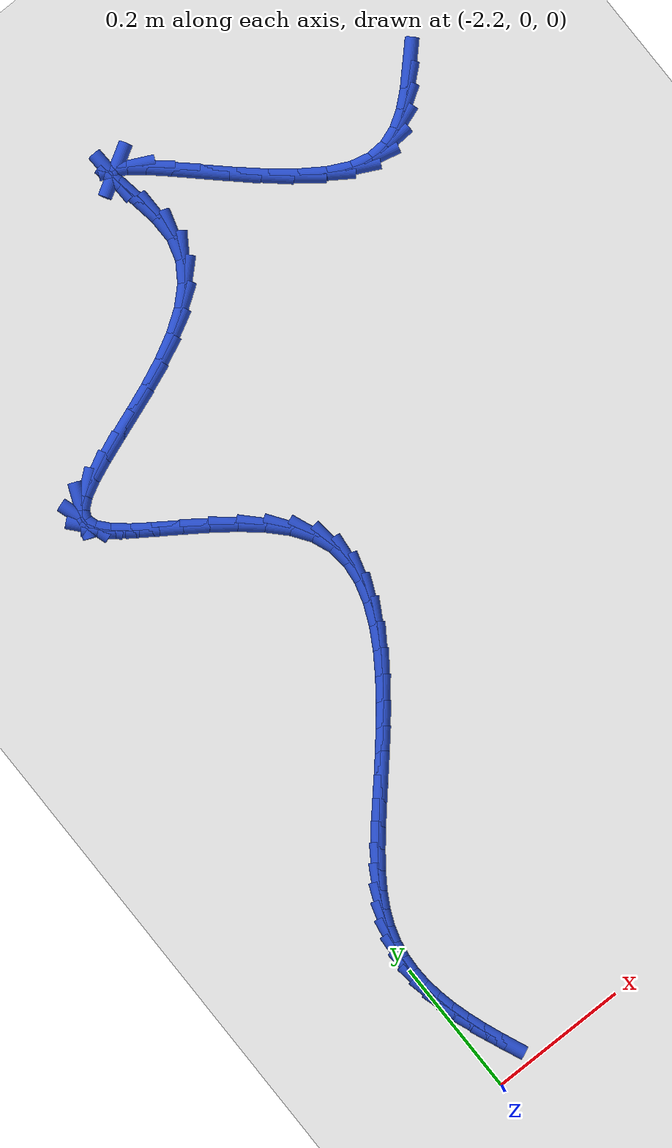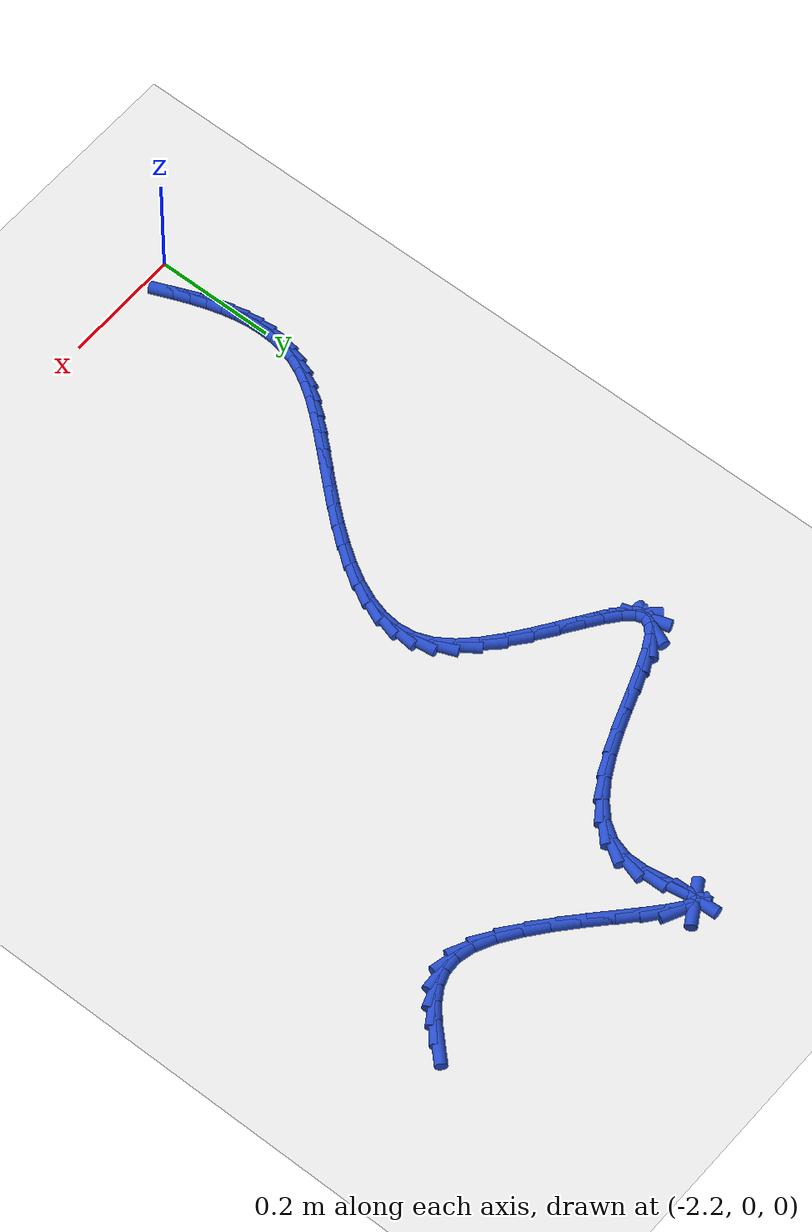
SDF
<sdf version="1.6">
 <world name="default">
  <model name="ground_plane">
   <static>1</static>
   <link name="link">
    <collision name="collision">
     <geometry><plane><normal>0 0 1</normal><size>100 100</size></plane></geometry>
     <surface><friction><ode><mu>100</mu><mu2>50</mu2></ode></friction></surface>
    </collision>
    <visual name="visual">
     <cast_shadows>0</cast_shadows>
     <geometry><plane><normal>0 0 1</normal><size>100 100</size></plane></geometry>
     <material>
      <script><uri>file://media/materials/scripts/gazebo.material</uri><name>Gazebo/WhiteGlow</name></script>
     </material>
    </visual>
   </link>
  </model>
  <model name="line">
   <link name="link_72">
    <pose>-1.4235872560436782 1.1704492341806028 0.01 0 1.57 0.7982519712183381</pose>
    <collision name="collision">
     <geometry><cylinder><radius>0.01</radius><length>0.08</length></cylinder></geometry>
    </collision>
    <visual name="visual">
     <material>
      <script><name>Gazebo/Blue</name><uri>file://media/materials/scripts/gazebo.material</uri></script>
     </material>
     <geometry><cylinder><radius>0.01</radius><length>0.08</length></cylinder></geometry>
    </visual>
   </link>
   <link name="link_73">
    <pose>-1.4460318630372695 1.1474200840589925 0.01 0 1.57 0.7090607541136554</pose>
    <collision name="collision">
     <geometry><cylinder><radius>0.01</radius><length>0.08</length></cylinder></geometry>
    </collision>
    <visual name="visual">
     <material>
      <script><name>Gazebo/Blue</name><uri>file://media/materials/scripts/gazebo.material</uri></script>
     </material>
     <geometry><cylinder><radius>0.01</radius><length>0.08</length></cylinder></geometry>
    </visual>
   </link>
   <link name="link_74">
    <pose>-1.4687308864997617 1.1279466637587061 0.01 0 1.57 0.558853132135163</pose>
    <collision name="collision">
     <geometry><cylinder><radius>0.01</radius><length>0.08</length></cylinder></geometry>
    </collision>
    <visual name="visual">
     <material>
      <script><name>Gazebo/Blue</name><uri>file://media/materials/scripts/gazebo.material</uri></script>
     </material>
     <geometry><cylinder><radius>0.01</radius><length>0.08</length></cylinder></geometry>
    </visual>
   </link>
   <link name="link_75">
    <pose>-1.4922341354660724 1.1132488360381667 0.01 0 1.57 0.33675807732015695</pose>
    <collision name="collision">
     <geometry><cylinder><radius>0.01</radius><length>0.08</length></cylinder></geometry>
    </collision>
    <visual name="visual">
     <material>
      <script><name>Gazebo/Blue</name><uri>file://media/materials/scripts/gazebo.material</uri></script>
     </material>
     <geometry><cylinder><radius>0.01</radius><length>0.08</length></cylinder></geometry>
    </visual>
   </link>
   <link name="link_76">
    <pose>-1.5170914189711193 1.1045464636558004 0.01 0 1.57 0.05551061248577287</pose>
    <collision name="collision">
     <geometry><cylinder><radius>0.01</radius><length>0.08</length></cylinder></geometry>
    </collision>
    <visual name="visual">
     <material>
      <script><name>Gazebo/Blue</name><uri>file://media/materials/scripts/gazebo.material</uri></script>
     </material>
     <geometry><cylinder><radius>0.01</radius><length>0.08</length></cylinder></geometry>
    </visual>
   </link>
   <link name="link_77">
    <pose>-1.5438525460498191 1.1030594093700317 0.01 0 1.57 -0.23348159372343535</pose>
    <collision name="collision">
     <geometry><cylinder><radius>0.01</radius><length>0.08</length></cylinder></geometry>
    </collision>
    <visual name="visual">
     <material>
      <script><name>Gazebo/Blue</name><uri>file://media/materials/scripts/gazebo.material</uri></script>
     </material>
     <geometry><cylinder><radius>0.01</radius><length>0.08</length></cylinder></geometry>
    </visual>
   </link>
   <link name="link_78">
    <pose>-1.5730671661532725 1.1100071964035487 0.01 0 1.57 -0.46165073849910976</pose>
    <collision name="collision">
     <geometry><cylinder><radius>0.01</radius><length>0.08</length></cylinder></geometry>
    </collision>
    <visual name="visual">
     <material>
      <script><name>Gazebo/Blue</name><uri>file://media/materials/scripts/gazebo.material</uri></script>
     </material>
     <geometry><cylinder><radius>0.01</radius><length>0.08</length></cylinder></geometry>
    </visual>
   </link>
   <link name="link_79">
    <pose>-1.604933048893975 1.1258606769531987 0.01 0 1.57 -0.5978601764185076</pose>
    <collision name="collision">
     <geometry><cylinder><radius>0.01</radius><length>0.08</length></cylinder></geometry>
    </collision>
    <visual name="visual">
     <material>
      <script><name>Gazebo/Blue</name><uri>file://media/materials/scripts/gazebo.material</uri></script>
     </material>
     <geometry><cylinder><radius>0.01</radius><length>0.08</length></cylinder></geometry>
    </visual>
   </link>
   <link name="link_80">
    <pose>-1.6385494349935654 1.1487534373045385 0.01 0 1.57 -0.67844882124207</pose>
    <collision name="collision">
     <geometry><cylinder><radius>0.01</radius><length>0.08</length></cylinder></geometry>
    </collision>
    <visual name="visual">
     <material>
      <script><name>Gazebo/Blue</name><uri>file://media/materials/scripts/gazebo.material</uri></script>
     </material>
     <geometry><cylinder><radius>0.01</radius><length>0.08</length></cylinder></geometry>
    </visual>
   </link>
   <link name="link_81">
    <pose>-1.6728017893369374 1.1763642272977364 0.01 0 1.57 -0.7264177653819203</pose>
    <collision name="collision">
     <geometry><cylinder><radius>0.01</radius><length>0.08</length></cylinder></geometry>
    </collision>
    <visual name="visual">
     <material>
      <script><name>Gazebo/Blue</name><uri>file://media/materials/scripts/gazebo.material</uri></script>
     </material>
     <geometry><cylinder><radius>0.01</radius><length>0.08</length></cylinder></geometry>
    </visual>
   </link>
   <link name="link_82">
    <pose>-1.7065755768089876 1.2063717967729624 0.01 0 1.57 -0.7517221876317841</pose>
    <collision name="collision">
     <geometry><cylinder><radius>0.01</radius><length>0.08</length></cylinder></geometry>
    </collision>
    <visual name="visual">
     <material>
      <script><name>Gazebo/Blue</name><uri>file://media/materials/scripts/gazebo.material</uri></script>
     </material>
     <geometry><cylinder><radius>0.01</radius><length>0.08</length></cylinder></geometry>
    </visual>
   </link>
   <link name="link_83">
    <pose>-1.7387562622946104 1.2364548955703831 0.01 0 1.57 -0.7568653705524053</pose>
    <collision name="collision">
     <geometry><cylinder><radius>0.01</radius><length>0.08</length></cylinder></geometry>
    </collision>
    <visual name="visual">
     <material>
      <script><name>Gazebo/Blue</name><uri>file://media/materials/scripts/gazebo.material</uri></script>
     </material>
     <geometry><cylinder><radius>0.01</radius><length>0.08</length></cylinder></geometry>
    </visual>
   </link>
   <link name="link_84">
    <pose>-1.768229310678701 1.2642922735301685 0.01 0 1.57 -0.7367773390896397</pose>
    <collision name="collision">
     <geometry><cylinder><radius>0.01</radius><length>0.08</length></cylinder></geometry>
    </collision>
    <visual name="visual">
     <material>
      <script><name>Gazebo/Blue</name><uri>file://media/materials/scripts/gazebo.material</uri></script>
     </material>
     <geometry><cylinder><radius>0.01</radius><length>0.08</length></cylinder></geometry>
    </visual>
   </link>
   <link name="link_85">
    <pose>-1.7938801868461542 1.287562680492487 0.01 0 1.57 -0.6691481641951965</pose>
    <collision name="collision">
     <geometry><cylinder><radius>0.01</radius><length>0.08</length></cylinder></geometry>
    </collision>
    <visual name="visual">
     <material>
      <script><name>Gazebo/Blue</name><uri>file://media/materials/scripts/gazebo.material</uri></script>
     </material>
     <geometry><cylinder><radius>0.01</radius><length>0.08</length></cylinder></geometry>
    </visual>
   </link>
   <link name="link_86">
    <pose>-1.8145943556818658 1.3039448662975068 0.01 0 1.57 -0.45494892768815526</pose>
    <collision name="collision">
     <geometry><cylinder><radius>0.01</radius><length>0.08</length></cylinder></geometry>
    </collision>
    <visual name="visual">
     <material>
      <script><name>Gazebo/Blue</name><uri>file://media/materials/scripts/gazebo.material</uri></script>
     </material>
     <geometry><cylinder><radius>0.01</radius><length>0.08</length></cylinder></geometry>
    </visual>
   </link>
   <link name="link_87">
    <pose>-1.829257282070731 1.3111175807853974 0.01 0 1.57 0.5265474709646416</pose>
    <collision name="collision">
     <geometry><cylinder><radius>0.01</radius><length>0.08</length></cylinder></geometry>
    </collision>
    <visual name="visual">
     <material>
      <script><name>Gazebo/Blue</name><uri>file://media/materials/scripts/gazebo.material</uri></script>
     </material>
     <geometry><cylinder><radius>0.01</radius><length>0.08</length></cylinder></geometry>
    </visual>
   </link>
   <link name="link_88">
    <pose>-1.8367544308976447 1.3067595737963276 0.01 0 1.57 -1.540801448314165</pose>
    <collision name="collision">
     <geometry><cylinder><radius>0.01</radius><length>0.08</length></cylinder></geometry>
    </collision>
    <visual name="visual">
     <material>
      <script><name>Gazebo/Blue</name><uri>file://media/materials/scripts/gazebo.material</uri></script>
     </material>
     <geometry><cylinder><radius>0.01</radius><length>0.08</length></cylinder></geometry>
    </visual>
   </link>
   <link name="link_89">
    <pose>-1.8362167496333062 1.2888391809631905 0.01 0 1.57 -1.3735843112102128</pose>
    <collision name="collision">
     <geometry><cylinder><radius>0.01</radius><length>0.08</length></cylinder></geometry>
    </collision>
    <visual name="visual">
     <material>
      <script><name>Gazebo/Blue</name><uri>file://media/materials/scripts/gazebo.material</uri></script>
     </material>
     <geometry><cylinder><radius>0.01</radius><length>0.08</length></cylinder></geometry>
    </visual>
   </link>
   <link name="link_90">
    <pose>-1.8303668335758236 1.2595616583500457 0.01 0 1.57 -1.4098939483828357</pose>
    <collision name="collision">
     <geometry><cylinder><radius>0.01</radius><length>0.08</length></cylinder></geometry>
    </collision>
    <visual name="visual">
     <material>
      <script><name>Gazebo/Blue</name><uri>file://media/materials/scripts/gazebo.material</uri></script>
     </material>
     <geometry><cylinder><radius>0.01</radius><length>0.08</length></cylinder></geometry>
    </visual>
   </link>
   <link name="link_91">
    <pose>-1.8246510370739804 1.2243453694652016 0.01 0 1.57 -1.5688778619364343</pose>
    <collision name="collision">
     <geometry><cylinder><radius>0.01</radius><length>0.08</length></cylinder></geometry>
    </collision>
    <visual name="visual">
     <material>
      <script><name>Gazebo/Blue</name><uri>file://media/materials/scripts/gazebo.material</uri></script>
     </material>
     <geometry><cylinder><radius>0.01</radius><length>0.08</length></cylinder></geometry>
    </visual>
   </link>
   <link name="link_92">
    <pose>-1.824582629388292 1.188687900181095 0.01 0 1.57 1.2796221114584245</pose>
    <collision name="collision">
     <geometry><cylinder><radius>0.01</radius><length>0.08</length></cylinder></geometry>
    </collision>
    <visual name="visual">
     <material>
      <script><name>Gazebo/Blue</name><uri>file://media/materials/scripts/gazebo.material</uri></script>
     </material>
     <geometry><cylinder><radius>0.01</radius><length>0.08</length></cylinder></geometry>
    </visual>
   </link>
   <link name="link_93">
    <pose>-1.8341361884553697 1.156809976866114 0.01 0 1.57 0.9858809057834318</pose>
    <collision name="collision">
     <geometry><cylinder><radius>0.01</radius><length>0.08</length></cylinder></geometry>
    </collision>
    <visual name="visual">
     <material>
      <script><name>Gazebo/Blue</name><uri>file://media/materials/scripts/gazebo.material</uri></script>
     </material>
     <geometry><cylinder><radius>0.01</radius><length>0.08</length></cylinder></geometry>
    </visual>
   </link>
   <link name="link_94">
    <pose>-1.852550709955086 1.1290025752506985 0.01 0 1.57 0.7571572860627923</pose>
    <collision name="collision">
     <geometry><cylinder><radius>0.01</radius><length>0.08</length></cylinder></geometry>
    </collision>
    <visual name="visual">
     <material>
      <script><name>Gazebo/Blue</name><uri>file://media/materials/scripts/gazebo.material</uri></script>
     </material>
     <geometry><cylinder><radius>0.01</radius><length>0.08</length></cylinder></geometry>
    </visual>
   </link>
   <link name="link_95">
    <pose>-1.878157107450155 1.1048031129839926 0.01 0 1.57 0.5946738692166773</pose>
    <collision name="collision">
     <geometry><cylinder><radius>0.01</radius><length>0.08</length></cylinder></geometry>
    </collision>
    <visual name="visual">
     <material>
      <script><name>Gazebo/Blue</name><uri>file://media/materials/scripts/gazebo.material</uri></script>
     </material>
     <geometry><cylinder><radius>0.01</radius><length>0.08</length></cylinder></geometry>
    </visual>
   </link>
   <link name="link_96">
    <pose>-1.90928629450329 1.0837490077151413 0.01 0 1.57 0.4835660591032878</pose>
    <collision name="collision">
     <geometry><cylinder><radius>0.01</radius><length>0.08</length></cylinder></geometry>
    </collision>
    <visual name="visual">
     <material>
      <script><name>Gazebo/Blue</name><uri>file://media/materials/scripts/gazebo.material</uri></script>
     </material>
     <geometry><cylinder><radius>0.01</radius><length>0.08</length></cylinder></geometry>
    </visual>
   </link>
   <link name="link_97">
    <pose>-1.944269184677206 1.0653776770932877 0.01 0 1.57 0.4099316556567855</pose>
    <collision name="collision">
     <geometry><cylinder><radius>0.01</radius><length>0.08</length></cylinder></geometry>
    </collision>
    <visual name="visual">
     <material>
      <script><name>Gazebo/Blue</name><uri>file://media/materials/scripts/gazebo.material</uri></script>
     </material>
     <geometry><cylinder><radius>0.01</radius><length>0.08</length></cylinder></geometry>
    </visual>
   </link>
   <link name="link_98">
    <pose>-1.9814366915346158 1.0492265387675754 0.01 0 1.57 0.3648612576738903</pose>
    <collision name="collision">
     <geometry><cylinder><radius>0.01</radius><length>0.08</length></cylinder></geometry>
    </collision>
    <visual name="visual">
     <material>
      <script><name>Gazebo/Blue</name><uri>file://media/materials/scripts/gazebo.material</uri></script>
     </material>
     <geometry><cylinder><radius>0.01</radius><length>0.08</length></cylinder></geometry>
    </visual>
   </link>
   <link name="link_99">
    <pose>-2.019119728638234 1.0348330103871493 0.01 0 1.57 0.3442920967876485</pose>
    <collision name="collision">
     <geometry><cylinder><radius>0.01</radius><length>0.08</length></cylinder></geometry>
    </collision>
    <visual name="visual">
     <material>
      <script><name>Gazebo/Blue</name><uri>file://media/materials/scripts/gazebo.material</uri></script>
     </material>
     <geometry><cylinder><radius>0.01</radius><length>0.08</length></cylinder></geometry>
    </visual>
   </link>
   <link name="link_100">
    <pose>-2.055649209550776 1.0217345096011523 0.01 0 1.57 0.3490074221236085</pose>
    <collision name="collision">
     <geometry><cylinder><radius>0.01</radius><length>0.08</length></cylinder></geometry>
    </collision>
    <visual name="visual">
     <material>
      <script><name>Gazebo/Blue</name><uri>file://media/materials/scripts/gazebo.material</uri></script>
     </material>
     <geometry><cylinder><radius>0.01</radius><length>0.08</length></cylinder></geometry>
    </visual>
   </link>
   <link name="link_101">
    <pose>-2.0893560478349538 1.0094684540587293 0.01 0 1.57 0.38669195553112057</pose>
    <collision name="collision">
     <geometry><cylinder><radius>0.01</radius><length>0.08</length></cylinder></geometry>
    </collision>
    <visual name="visual">
     <material>
      <script><name>Gazebo/Blue</name><uri>file://media/materials/scripts/gazebo.material</uri></script>
     </material>
     <geometry><cylinder><radius>0.01</radius><length>0.08</length></cylinder></geometry>
    </visual>
   </link>
   <link name="link_102">
    <pose>-2.1185711570534815 0.9975722614090234 0.01 0 1.57 0.4795424879598216</pose>
    <collision name="collision">
     <geometry><cylinder><radius>0.01</radius><length>0.08</length></cylinder></geometry>
    </collision>
    <visual name="visual">
     <material>
      <script><name>Gazebo/Blue</name><uri>file://media/materials/scripts/gazebo.material</uri></script>
     </material>
     <geometry><cylinder><radius>0.01</radius><length>0.08</length></cylinder></geometry>
    </visual>
   </link>
   <link name="link_103">
    <pose>-2.1416254507690744 0.9855833493011792 0.01 0 1.57 0.6891779406904541</pose>
    <collision name="collision">
     <geometry><cylinder><radius>0.01</radius><length>0.08</length></cylinder></geometry>
    </collision>
    <visual name="visual">
     <material>
      <script><name>Gazebo/Blue</name><uri>file://media/materials/scripts/gazebo.material</uri></script>
     </material>
     <geometry><cylinder><radius>0.01</radius><length>0.08</length></cylinder></geometry>
    </visual>
   </link>
   <link name="link_104">
    <pose>-2.1568498425444456 0.97303913538434 0.01 0 1.57 1.171331188594482</pose>
    <collision name="collision">
     <geometry><cylinder><radius>0.01</radius><length>0.08</length></cylinder></geometry>
    </collision>
    <visual name="visual">
     <material>
      <script><name>Gazebo/Blue</name><uri>file://media/materials/scripts/gazebo.material</uri></script>
     </material>
     <geometry><cylinder><radius>0.01</radius><length>0.08</length></cylinder></geometry>
    </visual>
   </link>
   <link name="link_105">
    <pose>-2.1625752564697995 0.9594770387344149 0.01 0 1.57 -1.260213703583509</pose>
    <collision name="collision">
     <geometry><cylinder><radius>0.01</radius><length>0.08</length></cylinder></geometry>
    </collision>
    <visual name="visual">
     <material>
      <script><name>Gazebo/Blue</name><uri>file://media/materials/scripts/gazebo.material</uri></script>
     </material>
     <geometry><cylinder><radius>0.01</radius><length>0.08</length></cylinder></geometry>
    </visual>
   </link>
   <link name="link_106">
    <pose>-2.157774988789888 0.9445215375500159 0.01 0 1.57 -0.8650909576278999</pose>
    <collision name="collision">
     <geometry><cylinder><radius>0.01</radius><length>0.08</length></cylinder></geometry>
    </collision>
    <visual name="visual">
     <material>
      <script><name>Gazebo/Blue</name><uri>file://media/materials/scripts/gazebo.material</uri></script>
     </material>
     <geometry><cylinder><radius>0.01</radius><length>0.08</length></cylinder></geometry>
    </visual>
   </link>
   <link name="link_107">
    <pose>-2.143798723083212 0.9281191759770616 0.01 0 1.57 -0.6979848657002197</pose>
    <collision name="collision">
     <geometry><cylinder><radius>0.01</radius><length>0.08</length></cylinder></geometry>
    </collision>
    <visual name="visual">
     <material>
      <script><name>Gazebo/Blue</name><uri>file://media/materials/scripts/gazebo.material</uri></script>
     </material>
     <geometry><cylinder><radius>0.01</radius><length>0.08</length></cylinder></geometry>
    </visual>
   </link>
   <link name="link_108">
    <pose>-2.1225455419808816 0.910290956867682 0.01 0 1.57 -0.6254742750758543</pose>
    <collision name="collision">
     <geometry><cylinder><radius>0.01</radius><length>0.08</length></cylinder></geometry>
    </collision>
    <visual name="visual">
     <material>
      <script><name>Gazebo/Blue</name><uri>file://media/materials/scripts/gazebo.material</uri></script>
     </material>
     <geometry><cylinder><radius>0.01</radius><length>0.08</length></cylinder></geometry>
    </visual>
   </link>
   <link name="link_109">
    <pose>-2.0959145281140072 0.8910578830740079 0.01 0 1.57 -0.6004009489434341</pose>
    <collision name="collision">
     <geometry><cylinder><radius>0.01</radius><length>0.08</length></cylinder></geometry>
    </collision>
    <visual name="visual">
     <material>
      <script><name>Gazebo/Blue</name><uri>file://media/materials/scripts/gazebo.material</uri></script>
     </material>
     <geometry><cylinder><radius>0.01</radius><length>0.08</length></cylinder></geometry>
    </visual>
   </link>
   <link name="link_110">
    <pose>-2.0658047641136994 0.8704409574481694 0.01 0 1.57 -0.6064174139583626</pose>
    <collision name="collision">
     <geometry><cylinder><radius>0.01</radius><length>0.08</length></cylinder></geometry>
    </collision>
    <visual name="visual">
     <material>
      <script><name>Gazebo/Blue</name><uri>file://media/materials/scripts/gazebo.material</uri></script>
     </material>
     <geometry><cylinder><radius>0.01</radius><length>0.08</length></cylinder></geometry>
    </visual>
   </link>
   <link name="link_111">
    <pose>-2.0341153326110684 0.8484611828422964 0.01 0 1.57 -0.6392873319420104</pose>
    <collision name="collision">
     <geometry><cylinder><radius>0.01</radius><length>0.08</length></cylinder></geometry>
    </collision>
    <visual name="visual">
     <material>
      <script><name>Gazebo/Blue</name><uri>file://media/materials/scripts/gazebo.material</uri></script>
     </material>
     <geometry><cylinder><radius>0.01</radius><length>0.08</length></cylinder></geometry>
    </visual>
   </link>
   <link name="link_112">
    <pose>-2.0027453162372257 0.8251395621085204 0.01 0 1.57 -0.7017728472504519</pose>
    <collision name="collision">
     <geometry><cylinder><radius>0.01</radius><length>0.08</length></cylinder></geometry>
    </collision>
    <visual name="visual">
     <material>
      <script><name>Gazebo/Blue</name><uri>file://media/materials/scripts/gazebo.material</uri></script>
     </material>
     <geometry><cylinder><radius>0.01</radius><length>0.08</length></cylinder></geometry>
    </visual>
   </link>
   <link name="link_113">
    <pose>-1.9735937976232802 0.8004970980989704 0.01 0 1.57 -0.803215680664241</pose>
    <collision name="collision">
     <geometry><cylinder><radius>0.01</radius><length>0.08</length></cylinder></geometry>
    </collision>
    <visual name="visual">
     <material>
      <script><name>Gazebo/Blue</name><uri>file://media/materials/scripts/gazebo.material</uri></script>
     </material>
     <geometry><cylinder><radius>0.01</radius><length>0.08</length></cylinder></geometry>
    </visual>
   </link>
   <link name="link_114">
    <pose>-1.9485598594003437 0.7745547936657778 0.01 0 1.57 -0.9609961259694401</pose>
    <collision name="collision">
     <geometry><cylinder><radius>0.01</radius><length>0.08</length></cylinder></geometry>
    </collision>
    <visual name="visual">
     <material>
      <script><name>Gazebo/Blue</name><uri>file://media/materials/scripts/gazebo.material</uri></script>
     </material>
     <geometry><cylinder><radius>0.01</radius><length>0.08</length></cylinder></geometry>
    </visual>
   </link>
   <link name="link_115">
    <pose>-1.9295425841995253 0.7473336516610722 0.01 0 1.57 -1.1933982900613003</pose>
    <collision name="collision">
     <geometry><cylinder><radius>0.01</radius><length>0.08</length></cylinder></geometry>
    </collision>
    <visual name="visual">
     <material>
      <script><name>Gazebo/Blue</name><uri>file://media/materials/scripts/gazebo.material</uri></script>
     </material>
     <geometry><cylinder><radius>0.01</radius><length>0.08</length></cylinder></geometry>
    </visual>
   </link>
   <link name="link_116">
    <pose>-1.9182608859448702 0.7188731757246137 0.01 0 1.57 -1.450493628014452</pose>
    <collision name="collision">
     <geometry><cylinder><radius>0.01</radius><length>0.08</length></cylinder></geometry>
    </collision>
    <visual name="visual">
     <material>
      <script><name>Gazebo/Blue</name><uri>file://media/materials/scripts/gazebo.material</uri></script>
     </material>
     <geometry><cylinder><radius>0.01</radius><length>0.08</length></cylinder></geometry>
    </visual>
   </link>
   <link name="link_117">
    <pose>-1.9146969158873224 0.689391210551614 0.01 0 1.57 1.4663352931259137</pose>
    <collision name="collision">
     <geometry><cylinder><radius>0.01</radius><length>0.08</length></cylinder></geometry>
    </collision>
    <visual name="visual">
     <material>
      <script><name>Gazebo/Blue</name><uri>file://media/materials/scripts/gazebo.material</uri></script>
     </material>
     <geometry><cylinder><radius>0.01</radius><length>0.08</length></cylinder></geometry>
    </visual>
   </link>
   <link name="link_118">
    <pose>-1.9178616846881247 0.6592053232924278 0.01 0 1.57 1.2876865481965485</pose>
    <collision name="collision">
     <geometry><cylinder><radius>0.01</radius><length>0.08</length></cylinder></geometry>
    </collision>
    <visual name="visual">
     <material>
      <script><name>Gazebo/Blue</name><uri>file://media/materials/scripts/gazebo.material</uri></script>
     </material>
     <geometry><cylinder><radius>0.01</radius><length>0.08</length></cylinder></geometry>
    </visual>
   </link>
   <link name="link_119">
    <pose>-1.9267555743668305 0.6286341725091518 0.01 0 1.57 1.1523917907046848</pose>
    <collision name="collision">
     <geometry><cylinder><radius>0.01</radius><length>0.08</length></cylinder></geometry>
    </collision>
    <visual name="visual">
     <material>
      <script><name>Gazebo/Blue</name><uri>file://media/materials/scripts/gazebo.material</uri></script>
     </material>
     <geometry><cylinder><radius>0.01</radius><length>0.08</length></cylinder></geometry>
    </visual>
   </link>
   <link name="link_120">
    <pose>-1.940378966942997 0.5979964167638835 0.01 0 1.57 1.0518978655128917</pose>
    <collision name="collision">
     <geometry><cylinder><radius>0.01</radius><length>0.08</length></cylinder></geometry>
    </collision>
    <visual name="visual">
     <material>
      <script><name>Gazebo/Blue</name><uri>file://media/materials/scripts/gazebo.material</uri></script>
     </material>
     <geometry><cylinder><radius>0.01</radius><length>0.08</length></cylinder></geometry>
    </visual>
   </link>
   <link name="link_121">
    <pose>-1.9577322444361769 0.5676107146187196 0.01 0 1.57 0.9780052137120135</pose>
    <collision name="collision">
     <geometry><cylinder><radius>0.01</radius><length>0.08</length></cylinder></geometry>
    </collision>
    <visual name="visual">
     <material>
      <script><name>Gazebo/Blue</name><uri>file://media/materials/scripts/gazebo.material</uri></script>
     </material>
     <geometry><cylinder><radius>0.01</radius><length>0.08</length></cylinder></geometry>
    </visual>
   </link>
   <link name="link_122">
    <pose>-1.9778157888659276 0.537795724635757 0.01 0 1.57 0.9246458791120714</pose>
    <collision name="collision">
     <geometry><cylinder><radius>0.01</radius><length>0.08</length></cylinder></geometry>
    </collision>
    <visual name="visual">
     <material>
      <script><name>Gazebo/Blue</name><uri>file://media/materials/scripts/gazebo.material</uri></script>
     </material>
     <geometry><cylinder><radius>0.01</radius><length>0.08</length></cylinder></geometry>
    </visual>
   </link>
   <link name="link_123">
    <pose>-1.9996299822518024 0.508870105377094 0.01 0 1.57 0.887363288440194</pose>
    <collision name="collision">
     <geometry><cylinder><radius>0.01</radius><length>0.08</length></cylinder></geometry>
    </collision>
    <visual name="visual">
     <material>
      <script><name>Gazebo/Blue</name><uri>file://media/materials/scripts/gazebo.material</uri></script>
     </material>
     <geometry><cylinder><radius>0.01</radius><length>0.08</length></cylinder></geometry>
    </visual>
   </link>
   <link name="link_124">
    <pose>-2.0222497566076556 0.48109380606747904 0.01 0 1.57 0.8616686982615165</pose>
    <collision name="collision">
     <geometry><cylinder><radius>0.01</radius><length>0.08</length></cylinder></geometry>
    </collision>
    <visual name="visual">
     <material>
      <script><name>Gazebo/Blue</name><uri>file://media/materials/scripts/gazebo.material</uri></script>
     </material>
     <geometry><cylinder><radius>0.01</radius><length>0.08</length></cylinder></geometry>
    </visual>
   </link>
   <link name="link_125">
    <pose>-2.0451292149653306 0.4544281725659959 0.01 0 1.57 0.8467819835085943</pose>
    <collision name="collision">
     <geometry><cylinder><radius>0.01</radius><length>0.08</length></cylinder></geometry>
    </collision>
    <visual name="visual">
     <material>
      <script><name>Gazebo/Blue</name><uri>file://media/materials/scripts/gazebo.material</uri></script>
     </material>
     <geometry><cylinder><radius>0.01</radius><length>0.08</length></cylinder></geometry>
    </visual>
   </link>
   <link name="link_126">
    <pose>-2.06784270916814 0.4287398528299431 0.01 0 1.57 0.8432997041711405</pose>
    <collision name="collision">
     <geometry><cylinder><radius>0.01</radius><length>0.08</length></cylinder></geometry>
    </collision>
    <visual name="visual">
     <material>
      <script><name>Gazebo/Blue</name><uri>file://media/materials/scripts/gazebo.material</uri></script>
     </material>
     <geometry><cylinder><radius>0.01</radius><length>0.08</length></cylinder></geometry>
    </visual>
   </link>
   <link name="link_127">
    <pose>-2.089964639641825 0.4038954565571633 0.01 0 1.57 0.8522565360224107</pose>
    <collision name="collision">
     <geometry><cylinder><radius>0.01</radius><length>0.08</length></cylinder></geometry>
    </collision>
    <visual name="visual">
     <material>
      <script><name>Gazebo/Blue</name><uri>file://media/materials/scripts/gazebo.material</uri></script>
     </material>
     <geometry><cylinder><radius>0.01</radius><length>0.08</length></cylinder></geometry>
    </visual>
   </link>
   <link name="link_128">
    <pose>-2.1110694068121285 0.37976159344549776 0.01 0 1.57 0.875271803221018</pose>
    <collision name="collision">
     <geometry><cylinder><radius>0.01</radius><length>0.08</length></cylinder></geometry>
    </collision>
    <visual name="visual">
     <material>
      <script><name>Gazebo/Blue</name><uri>file://media/materials/scripts/gazebo.material</uri></script>
     </material>
     <geometry><cylinder><radius>0.01</radius><length>0.08</length></cylinder></geometry>
    </visual>
   </link>
   <link name="link_129">
    <pose>-2.1307314111047924 0.35620487319278793 0.01 0 1.57 0.91470842421465</pose>
    <collision name="collision">
     <geometry><cylinder><radius>0.01</radius><length>0.08</length></cylinder></geometry>
    </collision>
    <visual name="visual">
     <material>
      <script><name>Gazebo/Blue</name><uri>file://media/materials/scripts/gazebo.material</uri></script>
     </material>
     <geometry><cylinder><radius>0.01</radius><length>0.08</length></cylinder></geometry>
    </visual>
   </link>
   <link name="link_130">
    <pose>-2.148525052945559 0.33309190549687556 0.01 0 1.57 0.973802375634873</pose>
    <collision name="collision">
     <geometry><cylinder><radius>0.01</radius><length>0.08</length></cylinder></geometry>
    </collision>
    <visual name="visual">
     <material>
      <script><name>Gazebo/Blue</name><uri>file://media/materials/scripts/gazebo.material</uri></script>
     </material>
     <geometry><cylinder><radius>0.01</radius><length>0.08</length></cylinder></geometry>
    </visual>
   </link>
   <link name="link_131">
    <pose>-2.1640247327601703 0.310289300055602 0.01 0 1.57 1.0566225196214287</pose>
    <collision name="collision">
     <geometry><cylinder><radius>0.01</radius><length>0.08</length></cylinder></geometry>
    </collision>
    <visual name="visual">
     <material>
      <script><name>Gazebo/Blue</name><uri>file://media/materials/scripts/gazebo.material</uri></script>
     </material>
     <geometry><cylinder><radius>0.01</radius><length>0.08</length></cylinder></geometry>
    </visual>
   </link>
   <link name="link_132">
    <pose>-2.17680485097437 0.2876636665668097 0.01 0 1.57 1.1642004880088823</pose>
    <collision name="collision">
     <geometry><cylinder><radius>0.01</radius><length>0.08</length></cylinder></geometry>
    </collision>
    <visual name="visual">
     <material>
      <script><name>Gazebo/Blue</name><uri>file://media/materials/scripts/gazebo.material</uri></script>
     </material>
     <geometry><cylinder><radius>0.01</radius><length>0.08</length></cylinder></geometry>
    </visual>
   </link>
   <link name="link_133">
    <pose>-2.1865251951597338 0.26508918644574375 0.01 0 1.57 1.281380938215548</pose>
    <collision name="collision">
     <geometry><cylinder><radius>0.01</radius><length>0.08</length></cylinder></geometry>
    </collision>
    <visual name="visual">
     <material>
      <script><name>Gazebo/Blue</name><uri>file://media/materials/scripts/gazebo.material</uri></script>
     </material>
     <geometry><cylinder><radius>0.01</radius><length>0.08</length></cylinder></geometry>
    </visual>
   </link>
   <link name="link_134">
    <pose>-2.19325866384963 0.24247667378143847 0.01 0 1.57 1.3989708648375396</pose>
    <collision name="collision">
     <geometry><cylinder><radius>0.01</radius><length>0.08</length></cylinder></geometry>
    </collision>
    <visual name="visual">
     <material>
      <script><name>Gazebo/Blue</name><uri>file://media/materials/scripts/gazebo.material</uri></script>
     </material>
     <geometry><cylinder><radius>0.01</radius><length>0.08</length></cylinder></geometry>
    </visual>
   </link>
   <link name="link_135">
    <pose>-2.1972029209996187 0.21974800625463567 0.01 0 1.57 1.5118523728311462</pose>
    <collision name="collision">
     <geometry><cylinder><radius>0.01</radius><length>0.08</length></cylinder></geometry>
    </collision>
    <visual name="visual">
     <material>
      <script><name>Gazebo/Blue</name><uri>file://media/materials/scripts/gazebo.material</uri></script>
     </material>
     <geometry><cylinder><radius>0.01</radius><length>0.08</length></cylinder></geometry>
    </visual>
   </link>
   <link name="link_136">
    <pose>-2.198555656866614 0.1968250638783544 0.01 0 1.57 -1.5259426185544063</pose>
    <collision name="collision">
     <geometry><cylinder><radius>0.01</radius><length>0.08</length></cylinder></geometry>
    </collision>
    <visual name="visual">
     <material>
      <script><name>Gazebo/Blue</name><uri>file://media/materials/scripts/gazebo.material</uri></script>
     </material>
     <geometry><cylinder><radius>0.01</radius><length>0.08</length></cylinder></geometry>
    </visual>
   </link>
   <link name="link_137">
    <pose>-2.1975145617075236 0.17362972666561244 0.01 0 1.57 -1.4341664495810154</pose>
    <collision name="collision">
     <geometry><cylinder><radius>0.01</radius><length>0.08</length></cylinder></geometry>
    </collision>
    <visual name="visual">
     <material>
      <script><name>Gazebo/Blue</name><uri>file://media/materials/scripts/gazebo.material</uri></script>
     </material>
     <geometry><cylinder><radius>0.01</radius><length>0.08</length></cylinder></geometry>
    </visual>
   </link>
   <link name="link_138">
    <pose>-2.1942773257792614 0.15008387462942804 0.01 0 1.57 -1.3557862635896898</pose>
    <collision name="collision">
     <geometry><cylinder><radius>0.01</radius><length>0.08</length></cylinder></geometry>
    </collision>
    <visual name="visual">
     <material>
      <script><name>Gazebo/Blue</name><uri>file://media/materials/scripts/gazebo.material</uri></script>
     </material>
     <geometry><cylinder><radius>0.01</radius><length>0.08</length></cylinder></geometry>
    </visual>
   </link>
   <link name="link_139">
    <pose>-2.189041639338738 0.12610938778281944 0.01 0 1.57 -1.290918578709537</pose>
    <collision name="collision">
     <geometry><cylinder><radius>0.01</radius><length>0.08</length></cylinder></geometry>
    </collision>
    <visual name="visual">
     <material>
      <script><name>Gazebo/Blue</name><uri>file://media/materials/scripts/gazebo.material</uri></script>
     </material>
     <geometry><cylinder><radius>0.01</radius><length>0.08</length></cylinder></geometry>
    </visual>
   </link>
   <link name="link_140">
    <pose>-2.1820051926428645 0.1016281461388045 0.01 0 1.57 -1.2388784778083086</pose>
    <collision name="collision">
     <geometry><cylinder><radius>0.01</radius><length>0.08</length></cylinder></geometry>
    </collision>
    <visual name="visual">
     <material>
      <script><name>Gazebo/Blue</name><uri>file://media/materials/scripts/gazebo.material</uri></script>
     </material>
     <geometry><cylinder><radius>0.01</radius><length>0.08</length></cylinder></geometry>
    </visual>
   </link>
   <link name="link_141">
    <pose>-2.1733656759485527 0.07656202971040213 0.01 0 1.57 -1.1985846283525103</pose>
    <collision name="collision">
     <geometry><cylinder><radius>0.01</radius><length>0.08</length></cylinder></geometry>
    </collision>
    <visual name="visual">
     <material>
      <script><name>Gazebo/Blue</name><uri>file://media/materials/scripts/gazebo.material</uri></script>
     </material>
     <geometry><cylinder><radius>0.01</radius><length>0.08</length></cylinder></geometry>
    </visual>
   </link>
   <link name="link_142">
    <pose>-2.163320779512714 0.050832918510630334 0.01 0 1.57 -1.1688380101544464</pose>
    <collision name="collision">
     <geometry><cylinder><radius>0.01</radius><length>0.08</length></cylinder></geometry>
    </collision>
    <visual name="visual">
     <material>
      <script><name>Gazebo/Blue</name><uri>file://media/materials/scripts/gazebo.material</uri></script>
     </material>
     <geometry><cylinder><radius>0.01</radius><length>0.08</length></cylinder></geometry>
    </visual>
   </link>
  </model>
 </world>
</sdf>
